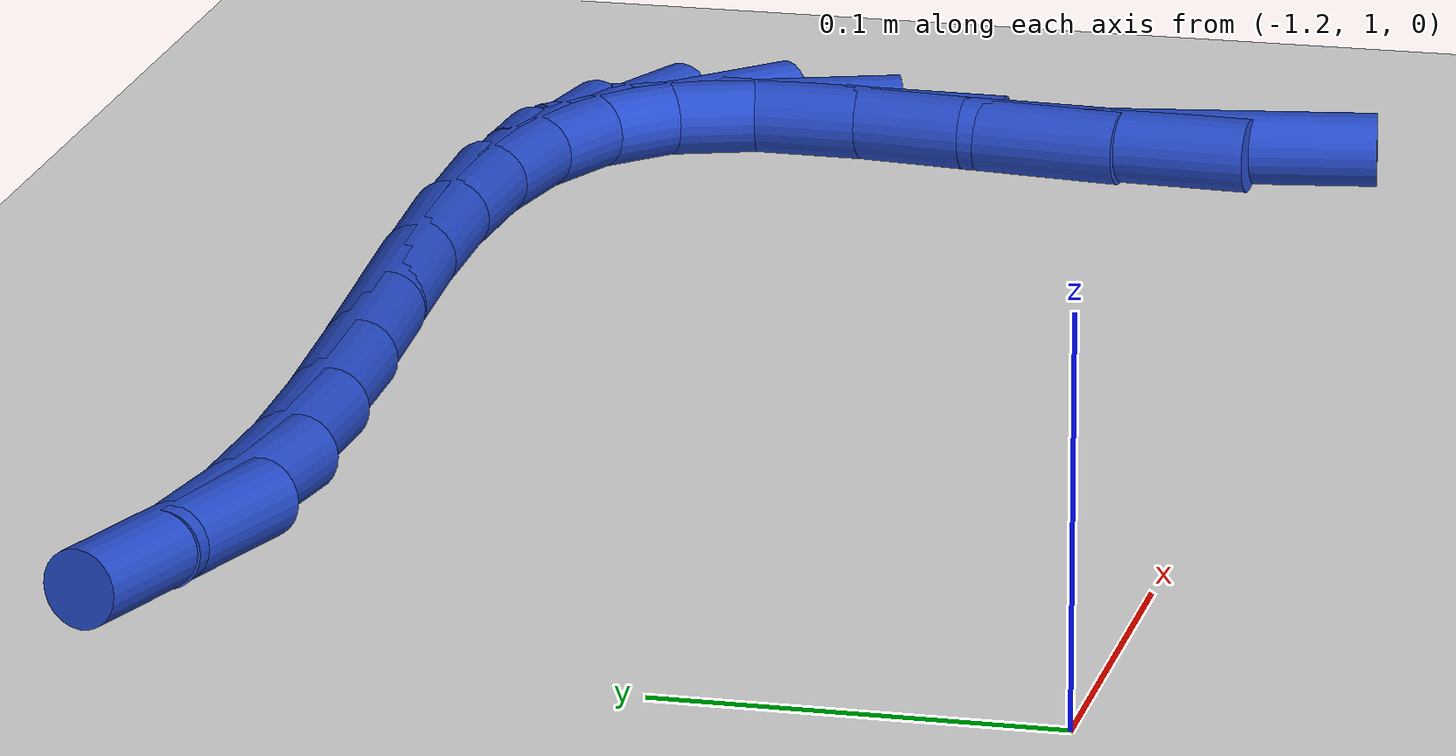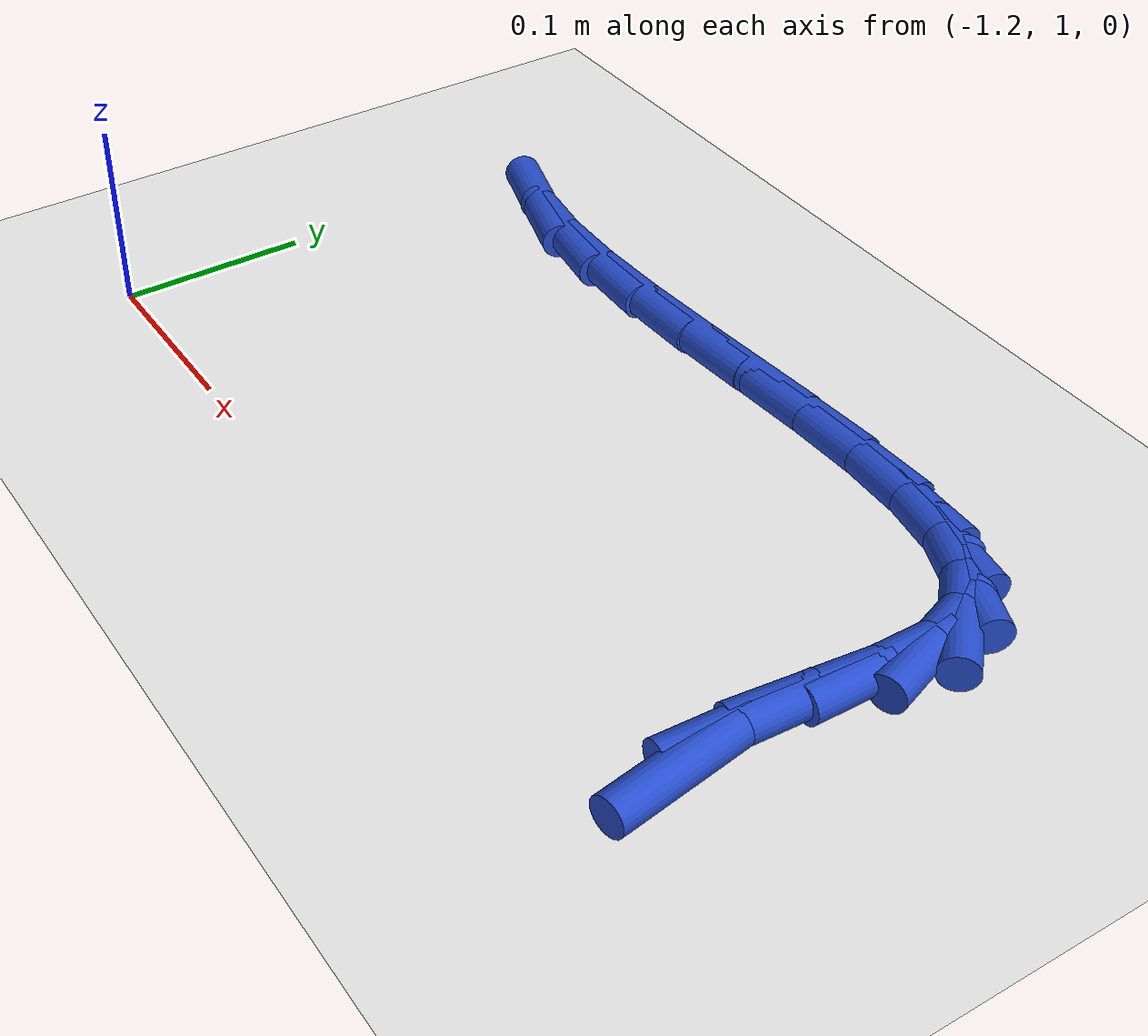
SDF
<sdf version="1.6">
 <world name="default">
  <model name="ground_plane">
   <static>1</static>
   <link name="link">
    <collision name="collision">
     <geometry><plane><normal>0 0 1</normal><size>100 100</size></plane></geometry>
     <surface><friction><ode><mu>100</mu><mu2>50</mu2></ode></friction></surface>
    </collision>
    <visual name="visual">
     <cast_shadows>0</cast_shadows>
     <geometry><plane><normal>0 0 1</normal><size>100 100</size></plane></geometry>
     <material>
      <script><uri>file://media/materials/scripts/gazebo.material</uri><name>Gazebo/WhiteGlow</name></script>
     </material>
    </visual>
   </link>
  </model>
  <model name="line">
   <link name="link_50">
    <pose>-0.7543496393309623 1.0443902150743467 0.01 0 1.57 -1.4177364187366572</pose>
    <collision name="collision">
     <geometry><cylinder><radius>0.01</radius><length>0.08</length></cylinder></geometry>
    </collision>
    <visual name="visual">
     <material>
      <script><name>Gazebo/Blue</name><uri>file://media/materials/scripts/gazebo.material</uri></script>
     </material>
     <geometry><cylinder><radius>0.01</radius><length>0.08</length></cylinder></geometry>
    </visual>
   </link>
   <link name="link_51">
    <pose>-0.7594941079737318 1.0777381511347617 0.01 0 1.57 1.5157177939530706</pose>
    <collision name="collision">
     <geometry><cylinder><radius>0.01</radius><length>0.08</length></cylinder></geometry>
    </collision>
    <visual name="visual">
     <material>
      <script><name>Gazebo/Blue</name><uri>file://media/materials/scripts/gazebo.material</uri></script>
     </material>
     <geometry><cylinder><radius>0.01</radius><length>0.08</length></cylinder></geometry>
    </visual>
   </link>
   <link name="link_52">
    <pose>-0.7575477567469486 1.1130401562696568 0.01 0 1.57 1.4526006844129304</pose>
    <collision name="collision">
     <geometry><cylinder><radius>0.01</radius><length>0.08</length></cylinder></geometry>
    </collision>
    <visual name="visual">
     <material>
      <script><name>Gazebo/Blue</name><uri>file://media/materials/scripts/gazebo.material</uri></script>
     </material>
     <geometry><cylinder><radius>0.01</radius><length>0.08</length></cylinder></geometry>
    </visual>
   </link>
   <link name="link_53">
    <pose>-0.7534687496534659 1.1473899380005947 0.01 0 1.57 1.555651029430251</pose>
    <collision name="collision">
     <geometry><cylinder><radius>0.01</radius><length>0.08</length></cylinder></geometry>
    </collision>
    <visual name="visual">
     <material>
      <script><name>Gazebo/Blue</name><uri>file://media/materials/scripts/gazebo.material</uri></script>
     </material>
     <geometry><cylinder><radius>0.01</radius><length>0.08</length></cylinder></geometry>
    </visual>
   </link>
   <link name="link_54">
    <pose>-0.7530133177027126 1.17745848779031 0.01 0 1.57 -1.234655585837399</pose>
    <collision name="collision">
     <geometry><cylinder><radius>0.01</radius><length>0.08</length></cylinder></geometry>
    </collision>
    <visual name="visual">
     <material>
      <script><name>Gazebo/Blue</name><uri>file://media/materials/scripts/gazebo.material</uri></script>
     </material>
     <geometry><cylinder><radius>0.01</radius><length>0.08</length></cylinder></geometry>
    </visual>
   </link>
   <link name="link_55">
    <pose>-0.761053278528035 1.2004692113534723 0.01 0 1.57 -0.7640641620262352</pose>
    <collision name="collision">
     <geometry><cylinder><radius>0.01</radius><length>0.08</length></cylinder></geometry>
    </collision>
    <visual name="visual">
     <material>
      <script><name>Gazebo/Blue</name><uri>file://media/materials/scripts/gazebo.material</uri></script>
     </material>
     <geometry><cylinder><radius>0.01</radius><length>0.08</length></cylinder></geometry>
    </visual>
   </link>
   <link name="link_56">
    <pose>-0.7778254460534036 1.2165405883329337 0.01 0 1.57 -0.39832741358225426</pose>
    <collision name="collision">
     <geometry><cylinder><radius>0.01</radius><length>0.08</length></cylinder></geometry>
    </collision>
    <visual name="visual">
     <material>
      <script><name>Gazebo/Blue</name><uri>file://media/materials/scripts/gazebo.material</uri></script>
     </material>
     <geometry><cylinder><radius>0.01</radius><length>0.08</length></cylinder></geometry>
    </visual>
   </link>
   <link name="link_57">
    <pose>-0.8020534108696513 1.226736274188868 0.01 0 1.57 -0.17525654782136993</pose>
    <collision name="collision">
     <geometry><cylinder><radius>0.01</radius><length>0.08</length></cylinder></geometry>
    </collision>
    <visual name="visual">
     <material>
      <script><name>Gazebo/Blue</name><uri>file://media/materials/scripts/gazebo.material</uri></script>
     </material>
     <geometry><cylinder><radius>0.01</radius><length>0.08</length></cylinder></geometry>
    </visual>
   </link>
   <link name="link_58">
    <pose>-0.8324599191438589 1.2321204518177424 0.01 0 1.57 -0.04632634324566324</pose>
    <collision name="collision">
     <geometry><cylinder><radius>0.01</radius><length>0.08</length></cylinder></geometry>
    </collision>
    <visual name="visual">
     <material>
      <script><name>Gazebo/Blue</name><uri>file://media/materials/scripts/gazebo.material</uri></script>
     </material>
     <geometry><cylinder><radius>0.01</radius><length>0.08</length></cylinder></geometry>
    </visual>
   </link>
   <link name="link_59">
    <pose>-0.8677677170431066 1.233757304116026 0.01 0 1.57 0.02686845820907022</pose>
    <collision name="collision">
     <geometry><cylinder><radius>0.01</radius><length>0.08</length></cylinder></geometry>
    </collision>
    <visual name="visual">
     <material>
      <script><name>Gazebo/Blue</name><uri>file://media/materials/scripts/gazebo.material</uri></script>
     </material>
     <geometry><cylinder><radius>0.01</radius><length>0.08</length></cylinder></geometry>
    </visual>
   </link>
   <link name="link_60">
    <pose>-0.9066995507344761 1.2327110139801867 0.01 0 1.57 0.06447782014905086</pose>
    <collision name="collision">
     <geometry><cylinder><radius>0.01</radius><length>0.08</length></cylinder></geometry>
    </collision>
    <visual name="visual">
     <material>
      <script><name>Gazebo/Blue</name><uri>file://media/materials/scripts/gazebo.material</uri></script>
     </material>
     <geometry><cylinder><radius>0.01</radius><length>0.08</length></cylinder></geometry>
    </visual>
   </link>
   <link name="link_61">
    <pose>-0.9479781663850473 1.2300457643066922 0.01 0 1.57 0.07589097898877292</pose>
    <collision name="collision">
     <geometry><cylinder><radius>0.01</radius><length>0.08</length></cylinder></geometry>
    </collision>
    <visual name="visual">
     <material>
      <script><name>Gazebo/Blue</name><uri>file://media/materials/scripts/gazebo.material</uri></script>
     </material>
     <geometry><cylinder><radius>0.01</radius><length>0.08</length></cylinder></geometry>
    </visual>
   </link>
   <link name="link_62">
    <pose>-0.9903263101619011 1.2268257379920116 0.01 0 1.57 0.06423502722498765</pose>
    <collision name="collision">
     <geometry><cylinder><radius>0.01</radius><length>0.08</length></cylinder></geometry>
    </collision>
    <visual name="visual">
     <material>
      <script><name>Gazebo/Blue</name><uri>file://media/materials/scripts/gazebo.material</uri></script>
     </material>
     <geometry><cylinder><radius>0.01</radius><length>0.08</length></cylinder></geometry>
    </visual>
   </link>
   <link name="link_63">
    <pose>-1.0324667282321192 1.2241151179326133 0.01 0 1.57 0.027960209830228892</pose>
    <collision name="collision">
     <geometry><cylinder><radius>0.01</radius><length>0.08</length></cylinder></geometry>
    </collision>
    <visual name="visual">
     <material>
      <script><name>Gazebo/Blue</name><uri>file://media/materials/scripts/gazebo.material</uri></script>
     </material>
     <geometry><cylinder><radius>0.01</radius><length>0.08</length></cylinder></geometry>
    </visual>
   </link>
   <link name="link_64">
    <pose>-1.0731221667627815 1.2229780870249645 0.01 0 1.57 -0.03958380470929589</pose>
    <collision name="collision">
     <geometry><cylinder><radius>0.01</radius><length>0.08</length></cylinder></geometry>
    </collision>
    <visual name="visual">
     <material>
      <script><name>Gazebo/Blue</name><uri>file://media/materials/scripts/gazebo.material</uri></script>
     </material>
     <geometry><cylinder><radius>0.01</radius><length>0.08</length></cylinder></geometry>
    </visual>
   </link>
   <link name="link_65">
    <pose>-1.1110153719209692 1.2244788281655348 0.01 0 1.57 -0.15201765976364542</pose>
    <collision name="collision">
     <geometry><cylinder><radius>0.01</radius><length>0.08</length></cylinder></geometry>
    </collision>
    <visual name="visual">
     <material>
      <script><name>Gazebo/Blue</name><uri>file://media/materials/scripts/gazebo.material</uri></script>
     </material>
     <geometry><cylinder><radius>0.01</radius><length>0.08</length></cylinder></geometry>
    </visual>
   </link>
   <link name="link_66">
    <pose>-1.144891387799129 1.2296686201536204 0.01 0 1.57 -0.29835471026319677</pose>
    <collision name="collision">
     <geometry><cylinder><radius>0.01</radius><length>0.08</length></cylinder></geometry>
    </collision>
    <visual name="visual">
     <material>
      <script><name>Gazebo/Blue</name><uri>file://media/materials/scripts/gazebo.material</uri></script>
     </material>
     <geometry><cylinder><radius>0.01</radius><length>0.08</length></cylinder></geometry>
    </visual>
   </link>
  </model>
 </world>
</sdf>
